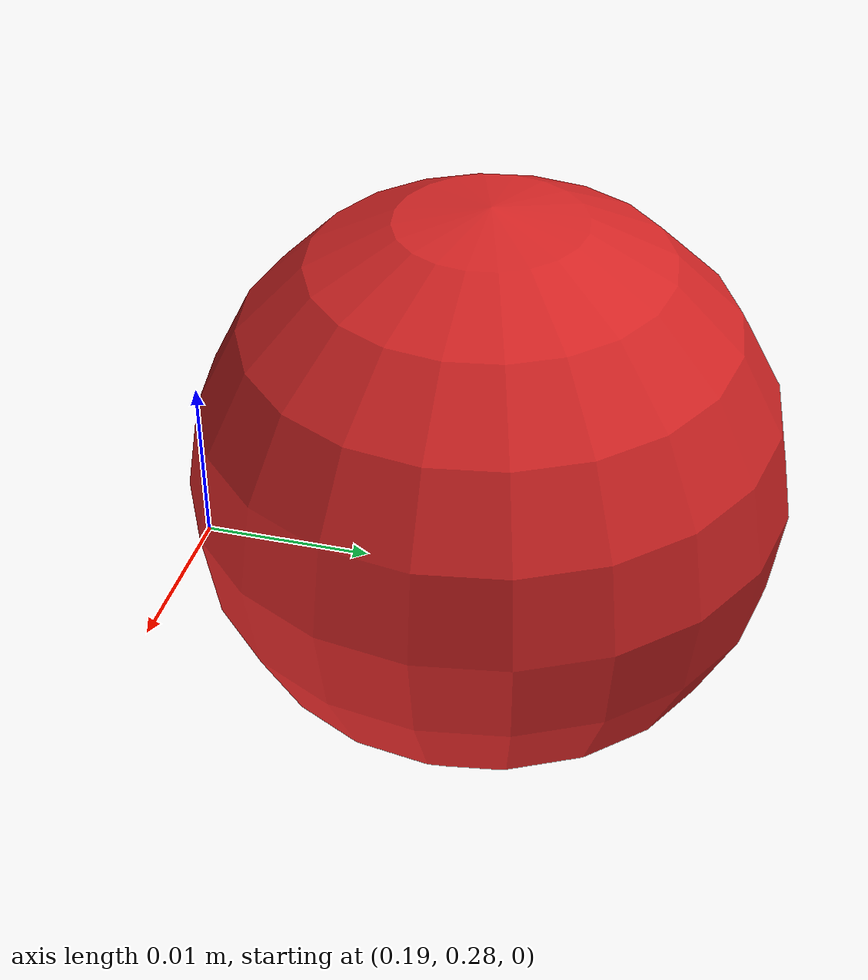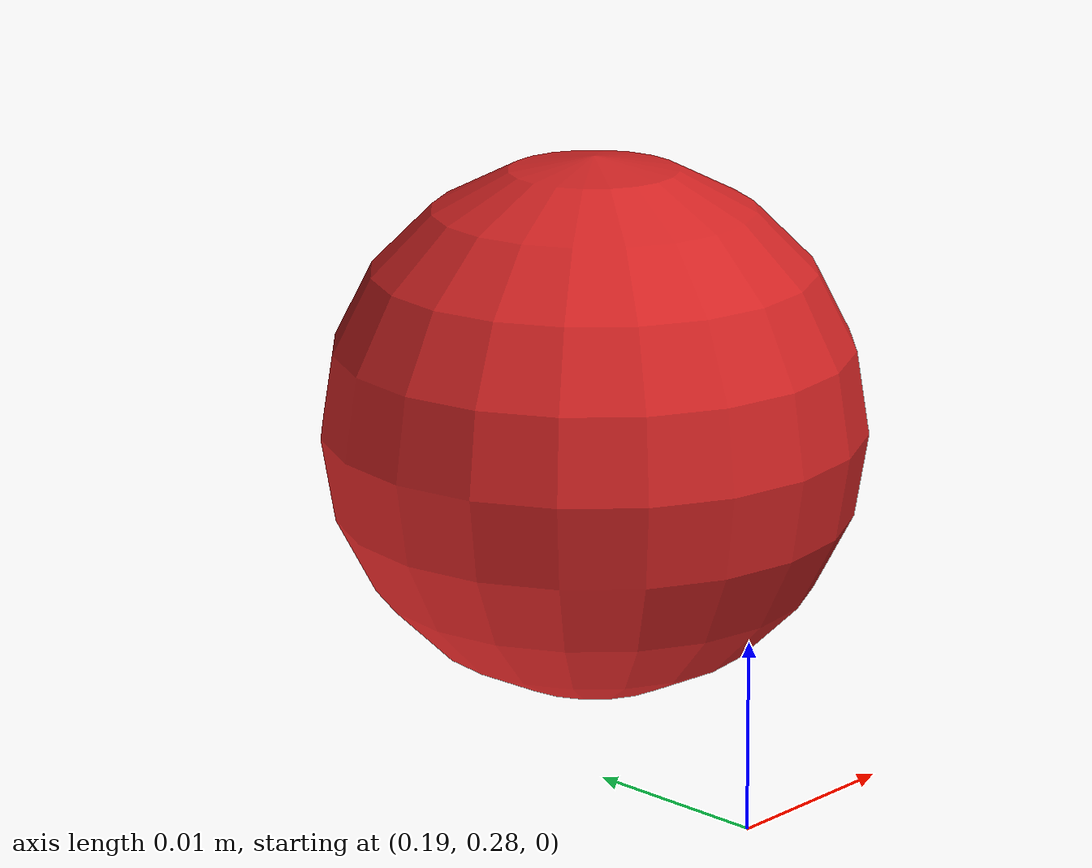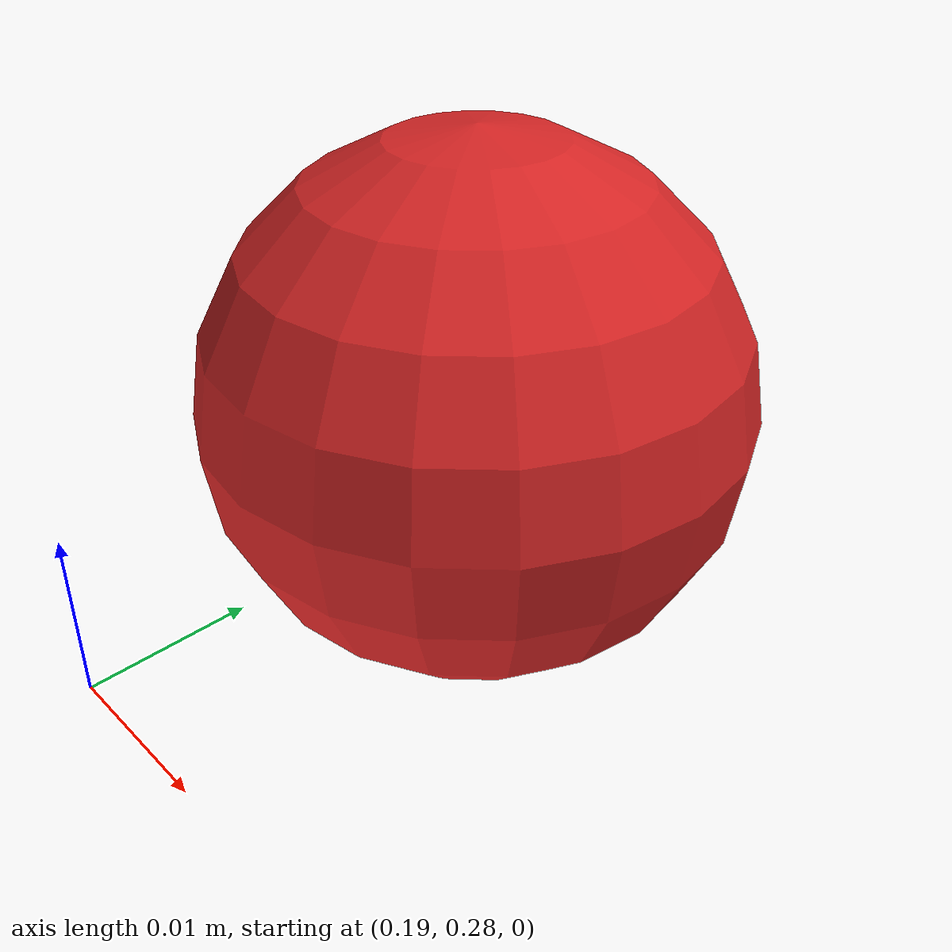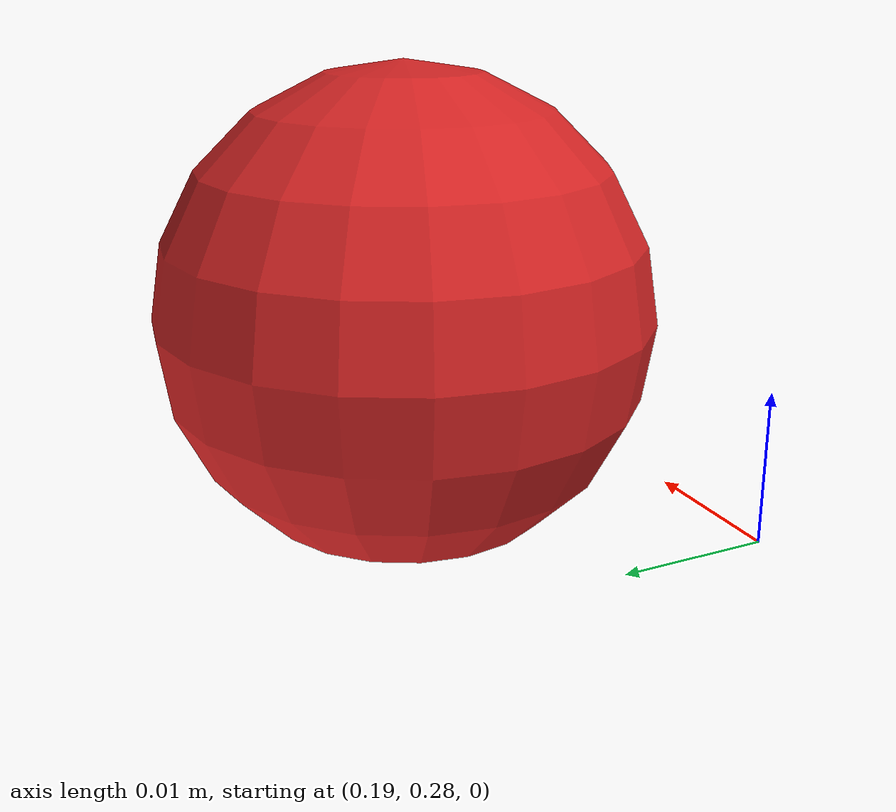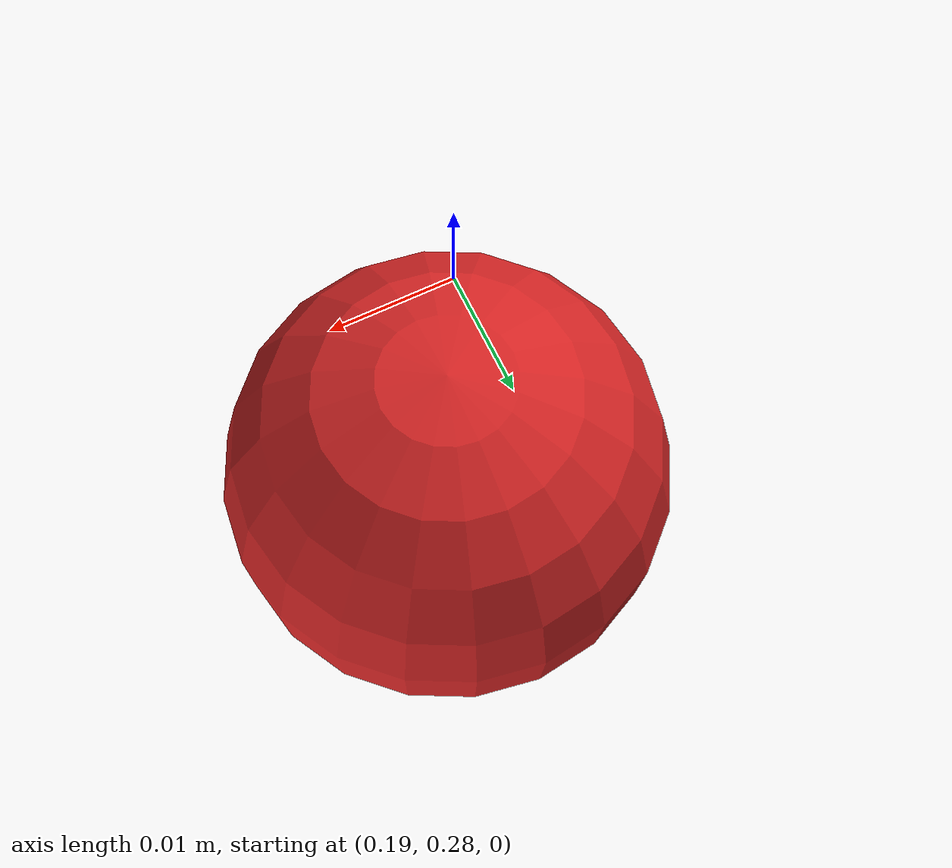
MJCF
<mujoco model="microduck_object_rubber_ball">
    <worldbody>
        <body name="rubber_ball" pos="0.2 0.3 0.015">
            <freejoint name="rubber_ball_free"/>
            <inertial pos="0 0 0" mass="0.015" diaginertia="1.35e-6 1.35e-6 1.35e-6"/>
            <geom name="rubber_ball_geom" type="sphere" size="0.015"
                  condim="4" friction="1.3 0.02 0.0005" solref="0.01 1"
                  solimp="0.95 0.99 0.001 0.5 2" priority="2"
                  rgba="0.85 0.15 0.15 1"/>
        </body>
    </worldbody>
</mujoco>
